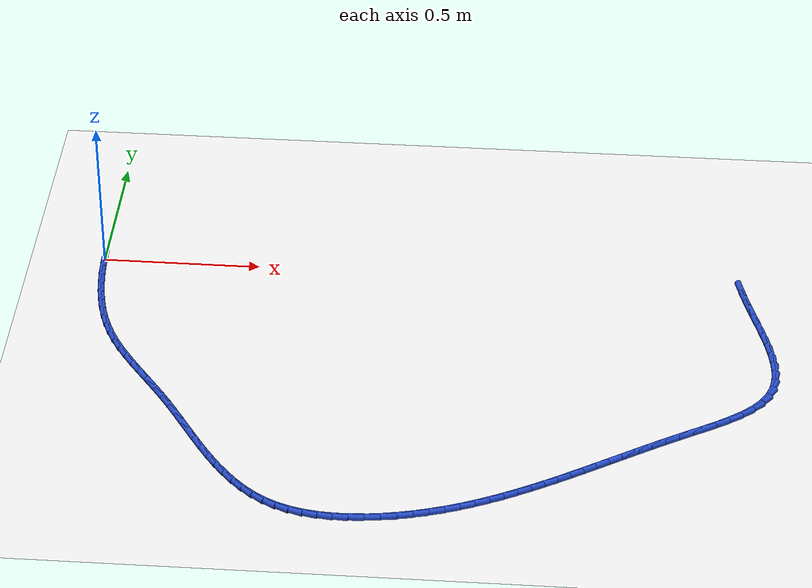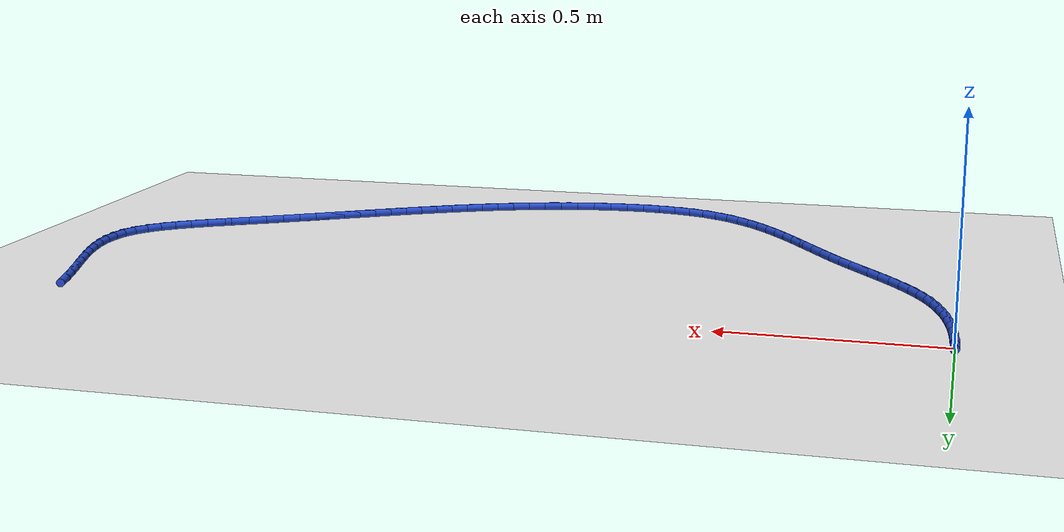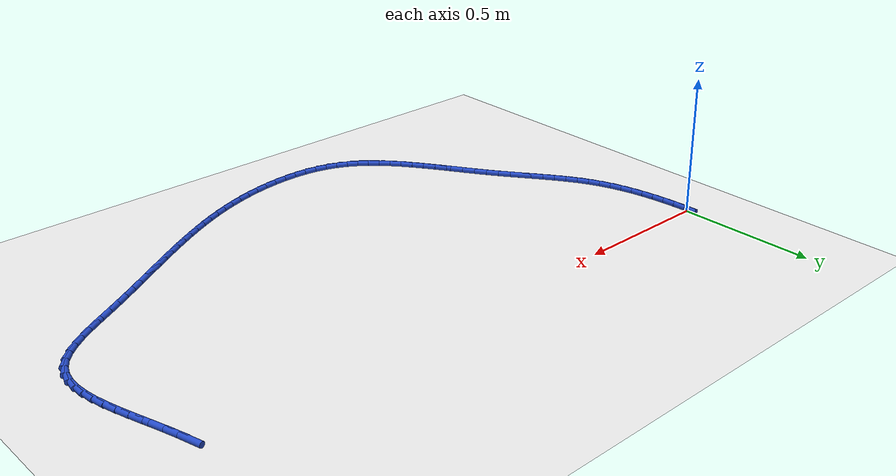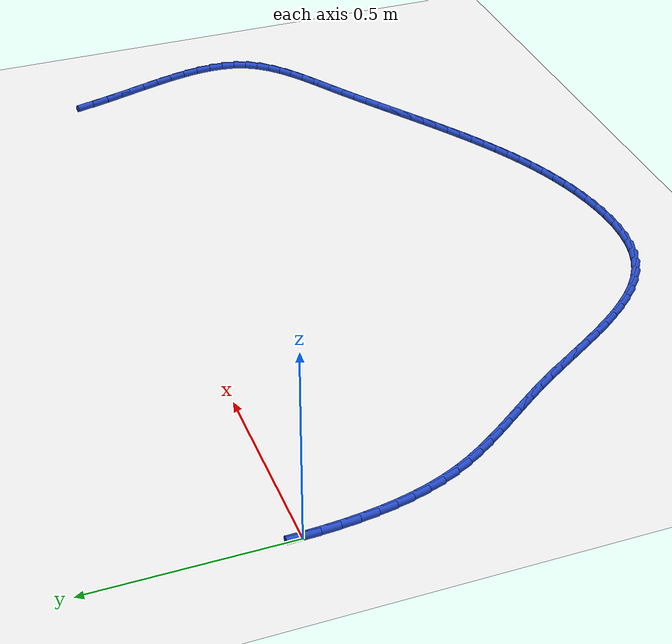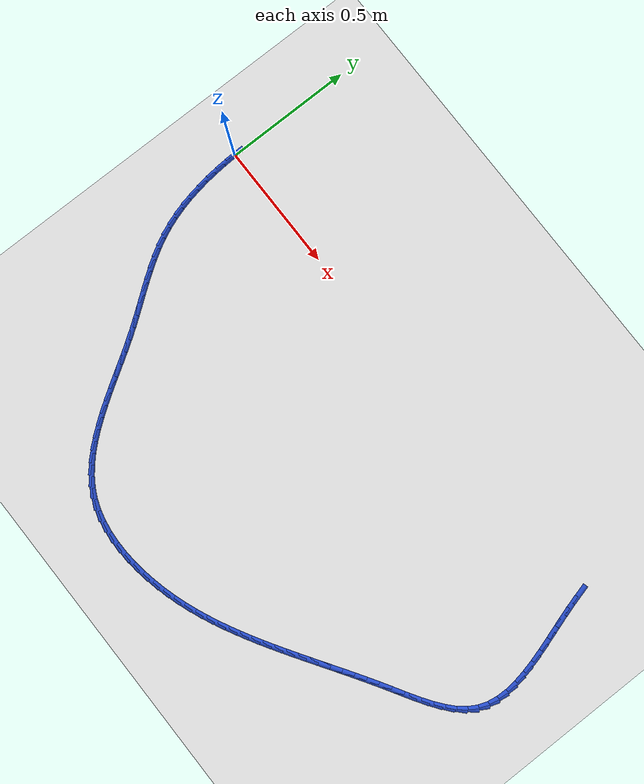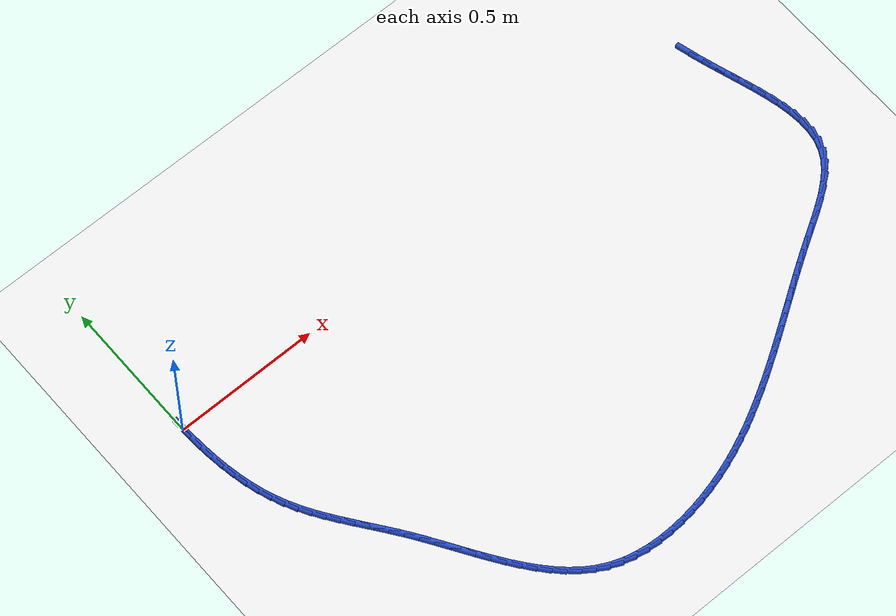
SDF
<sdf version="1.6">
 <world name="default">
  <model name="ground_plane">
   <static>1</static>
   <link name="link">
    <collision name="collision">
     <geometry><plane><normal>0 0 1</normal><size>100 100</size></plane></geometry>
     <surface><friction><ode><mu>100</mu><mu2>50</mu2></ode></friction></surface>
    </collision>
    <visual name="visual">
     <cast_shadows>0</cast_shadows>
     <geometry><plane><normal>0 0 1</normal><size>100 100</size></plane></geometry>
     <material>
      <script><uri>file://media/materials/scripts/gazebo.material</uri><name>Gazebo/WhiteGlow</name></script>
     </material>
    </visual>
   </link>
  </model>
  <model name="line">
   <link name="link_0">
    <pose>-3.599551212651875e-17 5.551115123125783e-17 0.01 0 1.57 -1.554165532073075</pose>
    <collision name="collision">
     <geometry><cylinder><radius>0.01</radius><length>0.08</length></cylinder></geometry>
    </collision>
    <visual name="visual">
     <material>
      <script><name>Gazebo/Blue</name><uri>file://media/materials/scripts/gazebo.material</uri></script>
     </material>
     <geometry><cylinder><radius>0.01</radius><length>0.08</length></cylinder></geometry>
    </visual>
   </link>
   <link name="link_81">
    <pose>2.035831810866708 -0.017603467212948684 0.01 0 1.57 -1.306541828671623</pose>
    <collision name="collision">
     <geometry><cylinder><radius>0.01</radius><length>0.08</length></cylinder></geometry>
    </collision>
    <visual name="visual">
     <material>
      <script><name>Gazebo/Blue</name><uri>file://media/materials/scripts/gazebo.material</uri></script>
     </material>
     <geometry><cylinder><radius>0.01</radius><length>0.08</length></cylinder></geometry>
    </visual>
   </link>
   <link name="link_82">
    <pose>2.048932139730655 -0.06601878638803448 0.01 0 1.57 -1.2786840140187428</pose>
    <collision name="collision">
     <geometry><cylinder><radius>0.01</radius><length>0.08</length></cylinder></geometry>
    </collision>
    <visual name="visual">
     <material>
      <script><name>Gazebo/Blue</name><uri>file://media/materials/scripts/gazebo.material</uri></script>
     </material>
     <geometry><cylinder><radius>0.01</radius><length>0.08</length></cylinder></geometry>
    </visual>
   </link>
   <link name="link_83">
    <pose>2.0634944408141584 -0.11444443114089173 0.01 0 1.57 -1.2641623788773009</pose>
    <collision name="collision">
     <geometry><cylinder><radius>0.01</radius><length>0.08</length></cylinder></geometry>
    </collision>
    <visual name="visual">
     <material>
      <script><name>Gazebo/Blue</name><uri>file://media/materials/scripts/gazebo.material</uri></script>
     </material>
     <geometry><cylinder><radius>0.01</radius><length>0.08</length></cylinder></geometry>
    </visual>
   </link>
   <link name="link_84">
    <pose>2.0787592655582796 -0.16265623861824155 0.01 0 1.57 -1.2626077807521692</pose>
    <collision name="collision">
     <geometry><cylinder><radius>0.01</radius><length>0.08</length></cylinder></geometry>
    </collision>
    <visual name="visual">
     <material>
      <script><name>Gazebo/Blue</name><uri>file://media/materials/scripts/gazebo.material</uri></script>
     </material>
     <geometry><cylinder><radius>0.01</radius><length>0.08</length></cylinder></geometry>
    </visual>
   </link>
   <link name="link_85">
    <pose>2.093967165404075 -0.21043004596680398 0.01 0 1.57 -1.274322316343719</pose>
    <collision name="collision">
     <geometry><cylinder><radius>0.01</radius><length>0.08</length></cylinder></geometry>
    </collision>
    <visual name="visual">
     <material>
      <script><name>Gazebo/Blue</name><uri>file://media/materials/scripts/gazebo.material</uri></script>
     </material>
     <geometry><cylinder><radius>0.01</radius><length>0.08</length></cylinder></geometry>
    </visual>
   </link>
   <link name="link_86">
    <pose>2.1083586917926036 -0.2575416903332993 0.01 0 1.57 -1.30034484187188</pose>
    <collision name="collision">
     <geometry><cylinder><radius>0.01</radius><length>0.08</length></cylinder></geometry>
    </collision>
    <visual name="visual">
     <material>
      <script><name>Gazebo/Blue</name><uri>file://media/materials/scripts/gazebo.material</uri></script>
     </material>
     <geometry><cylinder><radius>0.01</radius><length>0.08</length></cylinder></geometry>
    </visual>
   </link>
   <link name="link_87">
    <pose>2.1211743961649225 -0.3037670088644485 0.01 0 1.57 -1.342539152986948</pose>
    <collision name="collision">
     <geometry><cylinder><radius>0.01</radius><length>0.08</length></cylinder></geometry>
    </collision>
    <visual name="visual">
     <material>
      <script><name>Gazebo/Blue</name><uri>file://media/materials/scripts/gazebo.material</uri></script>
     </material>
     <geometry><cylinder><radius>0.01</radius><length>0.08</length></cylinder></geometry>
    </visual>
   </link>
   <link name="link_88">
    <pose>2.1316548299620917 -0.3488818387069702 0.01 0 1.57 -1.4036699571492643</pose>
    <collision name="collision">
     <geometry><cylinder><radius>0.01</radius><length>0.08</length></cylinder></geometry>
    </collision>
    <visual name="visual">
     <material>
      <script><name>Gazebo/Blue</name><uri>file://media/materials/scripts/gazebo.material</uri></script>
     </material>
     <geometry><cylinder><radius>0.01</radius><length>0.08</length></cylinder></geometry>
    </visual>
   </link>
   <link name="link_89">
    <pose>2.1390405446251677 -0.3926620170075852 0.01 0 1.57 -1.4873469736714229</pose>
    <collision name="collision">
     <geometry><cylinder><radius>0.01</radius><length>0.08</length></cylinder></geometry>
    </collision>
    <visual name="visual">
     <material>
      <script><name>Gazebo/Blue</name><uri>file://media/materials/scripts/gazebo.material</uri></script>
     </material>
     <geometry><cylinder><radius>0.01</radius><length>0.08</length></cylinder></geometry>
    </visual>
   </link>
   <link name="link_90">
    <pose>2.1425720915952104 -0.43488338091301404 0.01 0 1.57 1.5440442423830665</pose>
    <collision name="collision">
     <geometry><cylinder><radius>0.01</radius><length>0.08</length></cylinder></geometry>
    </collision>
    <visual name="visual">
     <material>
      <script><name>Gazebo/Blue</name><uri>file://media/materials/scripts/gazebo.material</uri></script>
     </material>
     <geometry><cylinder><radius>0.01</radius><length>0.08</length></cylinder></geometry>
    </visual>
   </link>
   <link name="link_91">
    <pose>2.141490022313277 -0.47532176756997646 0.01 0 1.57 1.4043839194622698</pose>
    <collision name="collision">
     <geometry><cylinder><radius>0.01</radius><length>0.08</length></cylinder></geometry>
    </collision>
    <visual name="visual">
     <material>
      <script><name>Gazebo/Blue</name><uri>file://media/materials/scripts/gazebo.material</uri></script>
     </material>
     <geometry><cylinder><radius>0.01</radius><length>0.08</length></cylinder></geometry>
    </visual>
   </link>
   <link name="link_92">
    <pose>2.1350348882204258 -0.5137530141251936 0.01 0 1.57 1.236149125360986</pose>
    <collision name="collision">
     <geometry><cylinder><radius>0.01</radius><length>0.08</length></cylinder></geometry>
    </collision>
    <visual name="visual">
     <material>
      <script><name>Gazebo/Blue</name><uri>file://media/materials/scripts/gazebo.material</uri></script>
     </material>
     <geometry><cylinder><radius>0.01</radius><length>0.08</length></cylinder></geometry>
    </visual>
   </link>
   <link name="link_93">
    <pose>2.122447240757716 -0.5499529577253844 0.01 0 1.57 1.0479607116930774</pose>
    <collision name="collision">
     <geometry><cylinder><radius>0.01</radius><length>0.08</length></cylinder></geometry>
    </collision>
    <visual name="visual">
     <material>
      <script><name>Gazebo/Blue</name><uri>file://media/materials/scripts/gazebo.material</uri></script>
     </material>
     <geometry><cylinder><radius>0.01</radius><length>0.08</length></cylinder></geometry>
    </visual>
   </link>
   <link name="link_94">
    <pose>2.1029944278024404 -0.5837056791967781 0.01 0 1.57 0.8750167726461675</pose>
    <collision name="collision">
     <geometry><cylinder><radius>0.01</radius><length>0.08</length></cylinder></geometry>
    </collision>
    <visual name="visual">
     <material>
      <script><name>Gazebo/Blue</name><uri>file://media/materials/scripts/gazebo.material</uri></script>
     </material>
     <geometry><cylinder><radius>0.01</radius><length>0.08</length></cylinder></geometry>
    </visual>
   </link>
   <link name="link_95">
    <pose>2.07680920905832 -0.6150614954306259 0.01 0 1.57 0.7456910814754769</pose>
    <collision name="collision">
     <geometry><cylinder><radius>0.01</radius><length>0.08</length></cylinder></geometry>
    </collision>
    <visual name="visual">
     <material>
      <script><name>Gazebo/Blue</name><uri>file://media/materials/scripts/gazebo.material</uri></script>
     </material>
     <geometry><cylinder><radius>0.01</radius><length>0.08</length></cylinder></geometry>
    </visual>
   </link>
   <link name="link_96">
    <pose>2.045056019507198 -0.6443881088195568 0.01 0 1.57 0.6542539412834865</pose>
    <collision name="collision">
     <geometry><cylinder><radius>0.01</radius><length>0.08</length></cylinder></geometry>
    </collision>
    <visual name="visual">
     <material>
      <script><name>Gazebo/Blue</name><uri>file://media/materials/scripts/gazebo.material</uri></script>
     </material>
     <geometry><cylinder><radius>0.01</radius><length>0.08</length></cylinder></geometry>
    </visual>
   </link>
   <link name="link_97">
    <pose>2.0089596655055786 -0.6720717944596654 0.01 0 1.57 0.5929977746168692</pose>
    <collision name="collision">
     <geometry><cylinder><radius>0.01</radius><length>0.08</length></cylinder></geometry>
    </collision>
    <visual name="visual">
     <material>
      <script><name>Gazebo/Blue</name><uri>file://media/materials/scripts/gazebo.material</uri></script>
     </material>
     <geometry><cylinder><radius>0.01</radius><length>0.08</length></cylinder></geometry>
    </visual>
   </link>
   <link name="link_98">
    <pose>1.969744953409959 -0.6984988274470466 0.01 0 1.57 0.5562165821362881</pose>
    <collision name="collision">
     <geometry><cylinder><radius>0.01</radius><length>0.08</length></cylinder></geometry>
    </collision>
    <visual name="visual">
     <material>
      <script><name>Gazebo/Blue</name><uri>file://media/materials/scripts/gazebo.material</uri></script>
     </material>
     <geometry><cylinder><radius>0.01</radius><length>0.08</length></cylinder></geometry>
    </visual>
   </link>
   <link name="link_99">
    <pose>1.9286366895768419 -0.7240554828777959 0.01 0 1.57 0.5405312106064081</pose>
    <collision name="collision">
     <geometry><cylinder><radius>0.01</radius><length>0.08</length></cylinder></geometry>
    </collision>
    <visual name="visual">
     <material>
      <script><name>Gazebo/Blue</name><uri>file://media/materials/scripts/gazebo.material</uri></script>
     </material>
     <geometry><cylinder><radius>0.01</radius><length>0.08</length></cylinder></geometry>
    </visual>
   </link>
   <link name="link_100">
    <pose>1.8868596803627264 -0.7491280358480079 0.01 0 1.57 0.5440728545800273</pose>
    <collision name="collision">
     <geometry><cylinder><radius>0.01</radius><length>0.08</length></cylinder></geometry>
    </collision>
    <visual name="visual">
     <material>
      <script><name>Gazebo/Blue</name><uri>file://media/materials/scripts/gazebo.material</uri></script>
     </material>
     <geometry><cylinder><radius>0.01</radius><length>0.08</length></cylinder></geometry>
    </visual>
   </link>
   <link name="link_101">
    <pose>1.8455991161535914 -0.7740898313174609 0.01 0 1.57 0.555580553844442</pose>
    <collision name="collision">
     <geometry><cylinder><radius>0.01</radius><length>0.08</length></cylinder></geometry>
    </collision>
    <visual name="visual">
     <material>
      <script><name>Gazebo/Blue</name><uri>file://media/materials/scripts/gazebo.material</uri></script>
     </material>
     <geometry><cylinder><radius>0.01</radius><length>0.08</length></cylinder></geometry>
    </visual>
   </link>
   <link name="link_102">
    <pose>1.8053372635820897 -0.7990847890966379 0.01 0 1.57 0.5651399592220017</pose>
    <collision name="collision">
     <geometry><cylinder><radius>0.01</radius><length>0.08</length></cylinder></geometry>
    </collision>
    <visual name="visual">
     <material>
      <script><name>Gazebo/Blue</name><uri>file://media/materials/scripts/gazebo.material</uri></script>
     </material>
     <geometry><cylinder><radius>0.01</radius><length>0.08</length></cylinder></geometry>
    </visual>
   </link>
   <link name="link_103">
    <pose>1.7659527518113018 -0.8240598095953846 0.01 0 1.57 0.5722585470033482</pose>
    <collision name="collision">
     <geometry><cylinder><radius>0.01</radius><length>0.08</length></cylinder></geometry>
    </collision>
    <visual name="visual">
     <material>
      <script><name>Gazebo/Blue</name><uri>file://media/materials/scripts/gazebo.material</uri></script>
     </material>
     <geometry><cylinder><radius>0.01</radius><length>0.08</length></cylinder></geometry>
    </visual>
   </link>
   <link name="link_104">
    <pose>1.727304595740349 -0.8489553913834956 0.01 0 1.57 0.5767876548533839</pose>
    <collision name="collision">
     <geometry><cylinder><radius>0.01</radius><length>0.08</length></cylinder></geometry>
    </collision>
    <visual name="visual">
     <material>
      <script><name>Gazebo/Blue</name><uri>file://media/materials/scripts/gazebo.material</uri></script>
     </material>
     <geometry><cylinder><radius>0.01</radius><length>0.08</length></cylinder></geometry>
    </visual>
   </link>
   <link name="link_105">
    <pose>1.6892518102683503 -0.8737120330307628 0.01 0 1.57 0.5786014558013306</pose>
    <collision name="collision">
     <geometry><cylinder><radius>0.01</radius><length>0.08</length></cylinder></geometry>
    </collision>
    <visual name="visual">
     <material>
      <script><name>Gazebo/Blue</name><uri>file://media/materials/scripts/gazebo.material</uri></script>
     </material>
     <geometry><cylinder><radius>0.01</radius><length>0.08</length></cylinder></geometry>
    </visual>
   </link>
   <link name="link_106">
    <pose>1.6516534102944247 -0.8982702331069811 0.01 0 1.57 0.5775999212968783</pose>
    <collision name="collision">
     <geometry><cylinder><radius>0.01</radius><length>0.08</length></cylinder></geometry>
    </collision>
    <visual name="visual">
     <material>
      <script><name>Gazebo/Blue</name><uri>file://media/materials/scripts/gazebo.material</uri></script>
     </material>
     <geometry><cylinder><radius>0.01</radius><length>0.08</length></cylinder></geometry>
    </visual>
   </link>
   <link name="link_107">
    <pose>1.6143684107176945 -0.9225704901819428 0.01 0 1.57 0.5737117852068002</pose>
    <collision name="collision">
     <geometry><cylinder><radius>0.01</radius><length>0.08</length></cylinder></geometry>
    </collision>
    <visual name="visual">
     <material>
      <script><name>Gazebo/Blue</name><uri>file://media/materials/scripts/gazebo.material</uri></script>
     </material>
     <geometry><cylinder><radius>0.01</radius><length>0.08</length></cylinder></geometry>
    </visual>
   </link>
   <link name="link_108">
    <pose>1.577255826437278 -0.9465533028254411 0.01 0 1.57 0.5668975133222439</pose>
    <collision name="collision">
     <geometry><cylinder><radius>0.01</radius><length>0.08</length></cylinder></geometry>
    </collision>
    <visual name="visual">
     <material>
      <script><name>Gazebo/Blue</name><uri>file://media/materials/scripts/gazebo.material</uri></script>
     </material>
     <geometry><cylinder><radius>0.01</radius><length>0.08</length></cylinder></geometry>
    </visual>
   </link>
   <link name="link_109">
    <pose>1.5401746723522953 -0.97015916960727 0.01 0 1.57 0.5571522228902352</pose>
    <collision name="collision">
     <geometry><cylinder><radius>0.01</radius><length>0.08</length></cylinder></geometry>
    </collision>
    <visual name="visual">
     <material>
      <script><name>Gazebo/Blue</name><uri>file://media/materials/scripts/gazebo.material</uri></script>
     </material>
     <geometry><cylinder><radius>0.01</radius><length>0.08</length></cylinder></geometry>
    </visual>
   </link>
   <link name="link_110">
    <pose>1.5029839633618665 -0.9933285890972228 0.01 0 1.57 0.5445084188971039</pose>
    <collision name="collision">
     <geometry><cylinder><radius>0.01</radius><length>0.08</length></cylinder></geometry>
    </collision>
    <visual name="visual">
     <material>
      <script><name>Gazebo/Blue</name><uri>file://media/materials/scripts/gazebo.material</uri></script>
     </material>
     <geometry><cylinder><radius>0.01</radius><length>0.08</length></cylinder></geometry>
    </visual>
   </link>
   <link name="link_111">
    <pose>1.4655427143651105 -1.016002059865093 0.01 0 1.57 0.5290383277724462</pose>
    <collision name="collision">
     <geometry><cylinder><radius>0.01</radius><length>0.08</length></cylinder></geometry>
    </collision>
    <visual name="visual">
     <material>
      <script><name>Gazebo/Blue</name><uri>file://media/materials/scripts/gazebo.material</uri></script>
     </material>
     <geometry><cylinder><radius>0.01</radius><length>0.08</length></cylinder></geometry>
    </visual>
   </link>
   <link name="link_112">
    <pose>1.427709940261149 -1.0381200804806734 0.01 0 1.57 0.510839055848475</pose>
    <collision name="collision">
     <geometry><cylinder><radius>0.01</radius><length>0.08</length></cylinder></geometry>
    </collision>
    <visual name="visual">
     <material>
      <script><name>Gazebo/Blue</name><uri>file://media/materials/scripts/gazebo.material</uri></script>
     </material>
     <geometry><cylinder><radius>0.01</radius><length>0.08</length></cylinder></geometry>
    </visual>
   </link>
   <link name="link_113">
    <pose>1.3893450049388272 -1.05962212338429 0.01 0 1.57 0.48935255383587223</pose>
    <collision name="collision">
     <geometry><cylinder><radius>0.01</radius><length>0.08</length></cylinder></geometry>
    </collision>
    <visual name="visual">
     <material>
      <script><name>Gazebo/Blue</name><uri>file://media/materials/scripts/gazebo.material</uri></script>
     </material>
     <geometry><cylinder><radius>0.01</radius><length>0.08</length></cylinder></geometry>
    </visual>
   </link>
   <link name="link_114">
    <pose>1.3503221112313102 -1.0804040302819815 0.01 0 1.57 0.4637555668067985</pose>
    <collision name="collision">
     <geometry><cylinder><radius>0.01</radius><length>0.08</length></cylinder></geometry>
    </collision>
    <visual name="visual">
     <material>
      <script><name>Gazebo/Blue</name><uri>file://media/materials/scripts/gazebo.material</uri></script>
     </material>
     <geometry><cylinder><radius>0.01</radius><length>0.08</length></cylinder></geometry>
    </visual>
   </link>
   <link name="link_115">
    <pose>1.3105355082258694 -1.1003027011675166 0.01 0 1.57 0.43411945554291476</pose>
    <collision name="collision">
     <geometry><cylinder><radius>0.01</radius><length>0.08</length></cylinder></geometry>
    </collision>
    <visual name="visual">
     <material>
      <script><name>Gazebo/Blue</name><uri>file://media/materials/scripts/gazebo.material</uri></script>
     </material>
     <geometry><cylinder><radius>0.01</radius><length>0.08</length></cylinder></geometry>
    </visual>
   </link>
   <link name="link_116">
    <pose>1.269880865088285 -1.1191508605982765 0.01 0 1.57 0.40062658136167045</pose>
    <collision name="collision">
     <geometry><cylinder><radius>0.01</radius><length>0.08</length></cylinder></geometry>
    </collision>
    <visual name="visual">
     <material>
      <script><name>Gazebo/Blue</name><uri>file://media/materials/scripts/gazebo.material</uri></script>
     </material>
     <geometry><cylinder><radius>0.01</radius><length>0.08</length></cylinder></geometry>
    </visual>
   </link>
   <link name="link_117">
    <pose>1.2282538509843368 -1.13678123313164 0.01 0 1.57 0.3635131979912279</pose>
    <collision name="collision">
     <geometry><cylinder><radius>0.01</radius><length>0.08</length></cylinder></geometry>
    </collision>
    <visual name="visual">
     <material>
      <script><name>Gazebo/Blue</name><uri>file://media/materials/scripts/gazebo.material</uri></script>
     </material>
     <geometry><cylinder><radius>0.01</radius><length>0.08</length></cylinder></geometry>
    </visual>
   </link>
   <link name="link_118">
    <pose>1.1855501350798061 -1.15302654332499 0.01 0 1.57 0.32307732084629043</pose>
    <collision name="collision">
     <geometry><cylinder><radius>0.01</radius><length>0.08</length></cylinder></geometry>
    </collision>
    <visual name="visual">
     <material>
      <script><name>Gazebo/Blue</name><uri>file://media/materials/scripts/gazebo.material</uri></script>
     </material>
     <geometry><cylinder><radius>0.01</radius><length>0.08</length></cylinder></geometry>
    </visual>
   </link>
   <link name="link_119">
    <pose>1.1416653865404713 -1.1677195157357056 0.01 0 1.57 0.27973084835223566</pose>
    <collision name="collision">
     <geometry><cylinder><radius>0.01</radius><length>0.08</length></cylinder></geometry>
    </collision>
    <visual name="visual">
     <material>
      <script><name>Gazebo/Blue</name><uri>file://media/materials/scripts/gazebo.material</uri></script>
     </material>
     <geometry><cylinder><radius>0.01</radius><length>0.08</length></cylinder></geometry>
    </visual>
   </link>
   <link name="link_120">
    <pose>1.096527822024988 -1.1806858652754413 0.01 0 1.57 0.23394543316793345</pose>
    <collision name="collision">
     <geometry><cylinder><radius>0.01</radius><length>0.08</length></cylinder></geometry>
    </collision>
    <visual name="visual">
     <material>
      <script><name>Gazebo/Blue</name><uri>file://media/materials/scripts/gazebo.material</uri></script>
     </material>
     <geometry><cylinder><radius>0.01</radius><length>0.08</length></cylinder></geometry>
    </visual>
   </link>
   <link name="link_121">
    <pose>1.050366790086947 -1.1916864530771287 0.01 0 1.57 0.18508069113340334</pose>
    <collision name="collision">
     <geometry><cylinder><radius>0.01</radius><length>0.08</length></cylinder></geometry>
    </collision>
    <visual name="visual">
     <material>
      <script><name>Gazebo/Blue</name><uri>file://media/materials/scripts/gazebo.material</uri></script>
     </material>
     <geometry><cylinder><radius>0.01</radius><length>0.08</length></cylinder></geometry>
    </visual>
   </link>
   <link name="link_122">
    <pose>1.0035745955544273 -1.200447044920654 0.01 0 1.57 0.1320380446237207</pose>
    <collision name="collision">
     <geometry><cylinder><radius>0.01</radius><length>0.08</length></cylinder></geometry>
    </collision>
    <visual name="visual">
     <material>
      <script><name>Gazebo/Blue</name><uri>file://media/materials/scripts/gazebo.material</uri></script>
     </material>
     <geometry><cylinder><radius>0.01</radius><length>0.08</length></cylinder></geometry>
    </visual>
   </link>
   <link name="link_123">
    <pose>0.9565451446917279 -1.2066930616898879 0.01 0 1.57 0.07361658667678463</pose>
    <collision name="collision">
     <geometry><cylinder><radius>0.01</radius><length>0.08</length></cylinder></geometry>
    </collision>
    <visual name="visual">
     <material>
      <script><name>Gazebo/Blue</name><uri>file://media/materials/scripts/gazebo.material</uri></script>
     </material>
     <geometry><cylinder><radius>0.01</radius><length>0.08</length></cylinder></geometry>
    </visual>
   </link>
   <link name="link_124">
    <pose>0.9096723437631489 -1.210149924268701 0.01 0 1.57 0.008486631777080176</pose>
    <collision name="collision">
     <geometry><cylinder><radius>0.01</radius><length>0.08</length></cylinder></geometry>
    </collision>
    <visual name="visual">
     <material>
      <script><name>Gazebo/Blue</name><uri>file://media/materials/scripts/gazebo.material</uri></script>
     </material>
     <geometry><cylinder><radius>0.01</radius><length>0.08</length></cylinder></geometry>
    </visual>
   </link>
   <link name="link_125">
    <pose>0.8633500990329899 -1.210543053540965 0.01 0 1.57 -0.06481273244345126</pose>
    <collision name="collision">
     <geometry><cylinder><radius>0.01</radius><length>0.08</length></cylinder></geometry>
    </collision>
    <visual name="visual">
     <material>
      <script><name>Gazebo/Blue</name><uri>file://media/materials/scripts/gazebo.material</uri></script>
     </material>
     <geometry><cylinder><radius>0.01</radius><length>0.08</length></cylinder></geometry>
    </visual>
   </link>
   <link name="link_126">
    <pose>0.8179723167655497 -1.2075978703905503 0.01 0 1.57 -0.14782744197241324</pose>
    <collision name="collision">
     <geometry><cylinder><radius>0.01</radius><length>0.08</length></cylinder></geometry>
    </collision>
    <visual name="visual">
     <material>
      <script><name>Gazebo/Blue</name><uri>file://media/materials/scripts/gazebo.material</uri></script>
     </material>
     <geometry><cylinder><radius>0.01</radius><length>0.08</length></cylinder></geometry>
    </visual>
   </link>
   <link name="link_127">
    <pose>0.7739329032251304 -1.2010397957013283 0.01 0 1.57 -0.24205695276315126</pose>
    <collision name="collision">
     <geometry><cylinder><radius>0.01</radius><length>0.08</length></cylinder></geometry>
    </collision>
    <visual name="visual">
     <material>
      <script><name>Gazebo/Blue</name><uri>file://media/materials/scripts/gazebo.material</uri></script>
     </material>
     <geometry><cylinder><radius>0.01</radius><length>0.08</length></cylinder></geometry>
    </visual>
   </link>
   <link name="link_128">
    <pose>0.7316257646760304 -1.1905942503571698 0.01 0 1.57 -0.3486905055361446</pose>
    <collision name="collision">
     <geometry><cylinder><radius>0.01</radius><length>0.08</length></cylinder></geometry>
    </collision>
    <visual name="visual">
     <material>
      <script><name>Gazebo/Blue</name><uri>file://media/materials/scripts/gazebo.material</uri></script>
     </material>
     <geometry><cylinder><radius>0.01</radius><length>0.08</length></cylinder></geometry>
    </visual>
   </link>
   <link name="link_129">
    <pose>0.6914448073825494 -1.1759866552419456 0.01 0 1.57 -0.46475305764086233</pose>
    <collision name="collision">
     <geometry><cylinder><radius>0.01</radius><length>0.08</length></cylinder></geometry>
    </collision>
    <visual name="visual">
     <material>
      <script><name>Gazebo/Blue</name><uri>file://media/materials/scripts/gazebo.material</uri></script>
     </material>
     <geometry><cylinder><radius>0.01</radius><length>0.08</length></cylinder></geometry>
    </visual>
   </link>
   <link name="link_130">
    <pose>0.6536820528138385 -1.1570530680965596 0.01 0 1.57 -0.5745301890725587</pose>
    <collision name="collision">
     <geometry><cylinder><radius>0.01</radius><length>0.08</length></cylinder></geometry>
    </collision>
    <visual name="visual">
     <material>
      <script><name>Gazebo/Blue</name><uri>file://media/materials/scripts/gazebo.material</uri></script>
     </material>
     <geometry><cylinder><radius>0.01</radius><length>0.08</length></cylinder></geometry>
    </visual>
   </link>
   <link name="link_131">
    <pose>0.6182076264287366 -1.1340876841936895 0.01 0 1.57 -0.6718939144396685</pose>
    <collision name="collision">
     <geometry><cylinder><radius>0.01</radius><length>0.08</length></cylinder></geometry>
    </collision>
    <visual name="visual">
     <material>
      <script><name>Gazebo/Blue</name><uri>file://media/materials/scripts/gazebo.material</uri></script>
     </material>
     <geometry><cylinder><radius>0.01</radius><length>0.08</length></cylinder></geometry>
    </visual>
   </link>
   <link name="link_132">
    <pose>0.584782464933864 -1.1075032670413607 0.01 0 1.57 -0.7556983390032271</pose>
    <collision name="collision">
     <geometry><cylinder><radius>0.01</radius><length>0.08</length></cylinder></geometry>
    </collision>
    <visual name="visual">
     <material>
      <script><name>Gazebo/Blue</name><uri>file://media/materials/scripts/gazebo.material</uri></script>
     </material>
     <geometry><cylinder><radius>0.01</radius><length>0.08</length></cylinder></geometry>
    </visual>
   </link>
   <link name="link_133">
    <pose>0.5531675048737251 -1.077712580323631 0.01 0 1.57 -0.8259387847700189</pose>
    <collision name="collision">
     <geometry><cylinder><radius>0.01</radius><length>0.08</length></cylinder></geometry>
    </collision>
    <visual name="visual">
     <material>
      <script><name>Gazebo/Blue</name><uri>file://media/materials/scripts/gazebo.material</uri></script>
     </material>
     <geometry><cylinder><radius>0.01</radius><length>0.08</length></cylinder></geometry>
    </visual>
   </link>
   <link name="link_134">
    <pose>0.5231236827928262 -1.0451283877245618 0.01 0 1.57 -0.8832864533294266</pose>
    <collision name="collision">
     <geometry><cylinder><radius>0.01</radius><length>0.08</length></cylinder></geometry>
    </collision>
    <visual name="visual">
     <material>
      <script><name>Gazebo/Blue</name><uri>file://media/materials/scripts/gazebo.material</uri></script>
     </material>
     <geometry><cylinder><radius>0.01</radius><length>0.08</length></cylinder></geometry>
    </visual>
   </link>
   <link name="link_135">
    <pose>0.4944119352356729 -1.0101634529282137 0.01 0 1.57 -0.92869942790441</pose>
    <collision name="collision">
     <geometry><cylinder><radius>0.01</radius><length>0.08</length></cylinder></geometry>
    </collision>
    <visual name="visual">
     <material>
      <script><name>Gazebo/Blue</name><uri>file://media/materials/scripts/gazebo.material</uri></script>
     </material>
     <geometry><cylinder><radius>0.01</radius><length>0.08</length></cylinder></geometry>
    </visual>
   </link>
   <link name="link_136">
    <pose>0.46679319874677067 -0.9732305396186458 0.01 0 1.57 -0.9631617552455688</pose>
    <collision name="collision">
     <geometry><cylinder><radius>0.01</radius><length>0.08</length></cylinder></geometry>
    </collision>
    <visual name="visual">
     <material>
      <script><name>Gazebo/Blue</name><uri>file://media/materials/scripts/gazebo.material</uri></script>
     </material>
     <geometry><cylinder><radius>0.01</radius><length>0.08</length></cylinder></geometry>
    </visual>
   </link>
   <link name="link_137">
    <pose>0.4400284098706266 -0.9347424114799205 0.01 0 1.57 -0.9875336671693203</pose>
    <collision name="collision">
     <geometry><cylinder><radius>0.01</radius><length>0.08</length></cylinder></geometry>
    </collision>
    <visual name="visual">
     <material>
      <script><name>Gazebo/Blue</name><uri>file://media/materials/scripts/gazebo.material</uri></script>
     </material>
     <geometry><cylinder><radius>0.01</radius><length>0.08</length></cylinder></geometry>
    </visual>
   </link>
   <link name="link_138">
    <pose>0.4138785051517458 -0.895111832196097 0.01 0 1.57 -1.0024766455863305</pose>
    <collision name="collision">
     <geometry><cylinder><radius>0.01</radius><length>0.08</length></cylinder></geometry>
    </collision>
    <visual name="visual">
     <material>
      <script><name>Gazebo/Blue</name><uri>file://media/materials/scripts/gazebo.material</uri></script>
     </material>
     <geometry><cylinder><radius>0.01</radius><length>0.08</length></cylinder></geometry>
    </visual>
   </link>
   <link name="link_139">
    <pose>0.38810442113463417 -0.8547515654512358 0.01 0 1.57 -1.0084213551024004</pose>
    <collision name="collision">
     <geometry><cylinder><radius>0.01</radius><length>0.08</length></cylinder></geometry>
    </collision>
    <visual name="visual">
     <material>
      <script><name>Gazebo/Blue</name><uri>file://media/materials/scripts/gazebo.material</uri></script>
     </material>
     <geometry><cylinder><radius>0.01</radius><length>0.08</length></cylinder></geometry>
    </visual>
   </link>
   <link name="link_140">
    <pose>0.36246709436379787 -0.8140743749293978 0.01 0 1.57 -1.0055569466779455</pose>
    <collision name="collision">
     <geometry><cylinder><radius>0.01</radius><length>0.08</length></cylinder></geometry>
    </collision>
    <visual name="visual">
     <material>
      <script><name>Gazebo/Blue</name><uri>file://media/materials/scripts/gazebo.material</uri></script>
     </material>
     <geometry><cylinder><radius>0.01</radius><length>0.08</length></cylinder></geometry>
    </visual>
   </link>
   <link name="link_141">
    <pose>0.3367274613837418 -0.7734930243146418 0.01 0 1.57 -0.9938298420260763</pose>
    <collision name="collision">
     <geometry><cylinder><radius>0.01</radius><length>0.08</length></cylinder></geometry>
    </collision>
    <visual name="visual">
     <material>
      <script><name>Gazebo/Blue</name><uri>file://media/materials/scripts/gazebo.material</uri></script>
     </material>
     <geometry><cylinder><radius>0.01</radius><length>0.08</length></cylinder></geometry>
    </visual>
   </link>
   <link name="link_142">
    <pose>0.31064645873897323 -0.7334202772910303 0.01 0 1.57 -0.9730654282620346</pose>
    <collision name="collision">
     <geometry><cylinder><radius>0.01</radius><length>0.08</length></cylinder></geometry>
    </collision>
    <visual name="visual">
     <material>
      <script><name>Gazebo/Blue</name><uri>file://media/materials/scripts/gazebo.material</uri></script>
     </material>
     <geometry><cylinder><radius>0.01</radius><length>0.08</length></cylinder></geometry>
    </visual>
   </link>
   <link name="link_143">
    <pose>0.28398887141177415 -0.6942646318836678 0.01 0 1.57 -0.9500662399651045</pose>
    <collision name="collision">
     <geometry><cylinder><radius>0.01</radius><length>0.08</length></cylinder></geometry>
    </collision>
    <visual name="visual">
     <material>
      <script><name>Gazebo/Blue</name><uri>file://media/materials/scripts/gazebo.material</uri></script>
     </material>
     <geometry><cylinder><radius>0.01</radius><length>0.08</length></cylinder></geometry>
    </visual>
   </link>
   <link name="link_144">
    <pose>0.25675404640165606 -0.6561745944983703 0.01 0 1.57 -0.936176046650244</pose>
    <collision name="collision">
     <geometry><cylinder><radius>0.01</radius><length>0.08</length></cylinder></geometry>
    </collision>
    <visual name="visual">
     <material>
      <script><name>Gazebo/Blue</name><uri>file://media/materials/scripts/gazebo.material</uri></script>
     </material>
     <geometry><cylinder><radius>0.01</radius><length>0.08</length></cylinder></geometry>
    </visual>
   </link>
   <link name="link_145">
    <pose>0.22930701961777147 -0.6188933371526484 0.01 0 1.57 -0.9327285254818964</pose>
    <collision name="collision">
     <geometry><cylinder><radius>0.01</radius><length>0.08</length></cylinder></geometry>
    </collision>
    <visual name="visual">
     <material>
      <script><name>Gazebo/Blue</name><uri>file://media/materials/scripts/gazebo.material</uri></script>
     </material>
     <geometry><cylinder><radius>0.01</radius><length>0.08</length></cylinder></geometry>
    </visual>
   </link>
   <link name="link_146">
    <pose>0.20204453290867616 -0.582128888584531 0.01 0 1.57 -0.9400884531574832</pose>
    <collision name="collision">
     <geometry><cylinder><radius>0.01</radius><length>0.08</length></cylinder></geometry>
    </collision>
    <visual name="visual">
     <material>
      <script><name>Gazebo/Blue</name><uri>file://media/materials/scripts/gazebo.material</uri></script>
     </material>
     <geometry><cylinder><radius>0.01</radius><length>0.08</length></cylinder></geometry>
    </visual>
   </link>
   <link name="link_147">
    <pose>0.17536332812292788 -0.5455892775320503 0.01 0 1.57 -0.9586333463136164</pose>
    <collision name="collision">
     <geometry><cylinder><radius>0.01</radius><length>0.08</length></cylinder></geometry>
    </collision>
    <visual name="visual">
     <material>
      <script><name>Gazebo/Blue</name><uri>file://media/materials/scripts/gazebo.material</uri></script>
     </material>
     <geometry><cylinder><radius>0.01</radius><length>0.08</length></cylinder></geometry>
    </visual>
   </link>
   <link name="link_148">
    <pose>0.14966014710908246 -0.5089825327332356 0.01 0 1.57 -0.98872550858696</pose>
    <collision name="collision">
     <geometry><cylinder><radius>0.01</radius><length>0.08</length></cylinder></geometry>
    </collision>
    <visual name="visual">
     <material>
      <script><name>Gazebo/Blue</name><uri>file://media/materials/scripts/gazebo.material</uri></script>
     </material>
     <geometry><cylinder><radius>0.01</radius><length>0.08</length></cylinder></geometry>
    </visual>
   </link>
   <link name="link_149">
    <pose>0.12533173171569664 -0.472016682926117 0.01 0 1.57 -1.0306358185953222</pose>
    <collision name="collision">
     <geometry><cylinder><radius>0.01</radius><length>0.08</length></cylinder></geometry>
    </collision>
    <visual name="visual">
     <material>
      <script><name>Gazebo/Blue</name><uri>file://media/materials/scripts/gazebo.material</uri></script>
     </material>
     <geometry><cylinder><radius>0.01</radius><length>0.08</length></cylinder></geometry>
    </visual>
   </link>
   <link name="link_150">
    <pose>0.10277482379132684 -0.43439975684872506 0.01 0 1.57 -1.084412657702827</pose>
    <collision name="collision">
     <geometry><cylinder><radius>0.01</radius><length>0.08</length></cylinder></geometry>
    </collision>
    <visual name="visual">
     <material>
      <script><name>Gazebo/Blue</name><uri>file://media/materials/scripts/gazebo.material</uri></script>
     </material>
     <geometry><cylinder><radius>0.01</radius><length>0.08</length></cylinder></geometry>
    </visual>
   </link>
   <link name="link_151">
    <pose>0.08238616518452932 -0.3958397832390892 0.01 0 1.57 -1.1489358443643753</pose>
    <collision name="collision">
     <geometry><cylinder><radius>0.01</radius><length>0.08</length></cylinder></geometry>
    </collision>
    <visual name="visual">
     <material>
      <script><name>Gazebo/Blue</name><uri>file://media/materials/scripts/gazebo.material</uri></script>
     </material>
     <geometry><cylinder><radius>0.01</radius><length>0.08</length></cylinder></geometry>
    </visual>
   </link>
   <link name="link_152">
    <pose>0.0645344400857504 -0.3560637366053472 0.01 0 1.57 -1.2145473399793802</pose>
    <collision name="collision">
     <geometry><cylinder><radius>0.01</radius><length>0.08</length></cylinder></geometry>
    </collision>
    <visual name="visual">
     <material>
      <script><name>Gazebo/Blue</name><uri>file://media/materials/scripts/gazebo.material</uri></script>
     </material>
     <geometry><cylinder><radius>0.01</radius><length>0.08</length></cylinder></geometry>
    </visual>
   </link>
   <link name="link_153">
    <pose>0.049260872469268545 -0.31501970705801113 0.01 0 1.57 -1.2750034852120886</pose>
    <collision name="collision">
     <geometry><cylinder><radius>0.01</radius><length>0.08</length></cylinder></geometry>
    </collision>
    <visual name="visual">
     <material>
      <script><name>Gazebo/Blue</name><uri>file://media/materials/scripts/gazebo.material</uri></script>
     </material>
     <geometry><cylinder><radius>0.01</radius><length>0.08</length></cylinder></geometry>
    </visual>
   </link>
   <link name="link_154">
    <pose>0.036394807522600624 -0.27279885462342646 0.01 0 1.57 -1.330022213113188</pose>
    <collision name="collision">
     <geometry><cylinder><radius>0.01</radius><length>0.08</length></cylinder></geometry>
    </collision>
    <visual name="visual">
     <material>
      <script><name>Gazebo/Blue</name><uri>file://media/materials/scripts/gazebo.material</uri></script>
     </material>
     <geometry><cylinder><radius>0.01</radius><length>0.08</length></cylinder></geometry>
    </visual>
   </link>
   <link name="link_155">
    <pose>0.025762031425948673 -0.22949474252688418 0.01 0 1.57 -1.3795965066587392</pose>
    <collision name="collision">
     <geometry><cylinder><radius>0.01</radius><length>0.08</length></cylinder></geometry>
    </collision>
    <visual name="visual">
     <material>
      <script><name>Gazebo/Blue</name><uri>file://media/materials/scripts/gazebo.material</uri></script>
     </material>
     <geometry><cylinder><radius>0.01</radius><length>0.08</length></cylinder></geometry>
    </visual>
   </link>
   <link name="link_156">
    <pose>0.017188330359514614 -0.18520093399367477 0.01 0 1.57 -1.4238471661773346</pose>
    <collision name="collision">
     <geometry><cylinder><radius>0.01</radius><length>0.08</length></cylinder></geometry>
    </collision>
    <visual name="visual">
     <material>
      <script><name>Gazebo/Blue</name><uri>file://media/materials/scripts/gazebo.material</uri></script>
     </material>
     <geometry><cylinder><radius>0.01</radius><length>0.08</length></cylinder></geometry>
    </visual>
   </link>
   <link name="link_157">
    <pose>0.01049949050350076 -0.1400109922490909 0.01 0 1.57 -1.4629768848251217</pose>
    <collision name="collision">
     <geometry><cylinder><radius>0.01</radius><length>0.08</length></cylinder></geometry>
    </collision>
    <visual name="visual">
     <material>
      <script><name>Gazebo/Blue</name><uri>file://media/materials/scripts/gazebo.material</uri></script>
     </material>
     <geometry><cylinder><radius>0.01</radius><length>0.08</length></cylinder></geometry>
    </visual>
   </link>
   <link name="link_158">
    <pose>0.005521298038109011 -0.09401848051842299 0.01 0 1.57 -1.4972323779610763</pose>
    <collision name="collision">
     <geometry><cylinder><radius>0.01</radius><length>0.08</length></cylinder></geometry>
    </collision>
    <visual name="visual">
     <material>
      <script><name>Gazebo/Blue</name><uri>file://media/materials/scripts/gazebo.material</uri></script>
     </material>
     <geometry><cylinder><radius>0.01</radius><length>0.08</length></cylinder></geometry>
    </visual>
   </link>
   <link name="link_159">
    <pose>0.0020795391435413976 -0.04731696202696225 0.01 0 1.57 -1.5268754639667677</pose>
    <collision name="collision">
     <geometry><cylinder><radius>0.01</radius><length>0.08</length></cylinder></geometry>
    </collision>
    <visual name="visual">
     <material>
      <script><name>Gazebo/Blue</name><uri>file://media/materials/scripts/gazebo.material</uri></script>
     </material>
     <geometry><cylinder><radius>0.01</radius><length>0.08</length></cylinder></geometry>
    </visual>
   </link>
   <link name="link_160">
    <pose>-4.206704429243757e-17 1.942890293094024e-16 0.01 0 1.57 -1.5521623051858808</pose>
    <collision name="collision">
     <geometry><cylinder><radius>0.01</radius><length>0.08</length></cylinder></geometry>
    </collision>
    <visual name="visual">
     <material>
      <script><name>Gazebo/Blue</name><uri>file://media/materials/scripts/gazebo.material</uri></script>
     </material>
     <geometry><cylinder><radius>0.01</radius><length>0.08</length></cylinder></geometry>
    </visual>
   </link>
  </model>
 </world>
</sdf>
